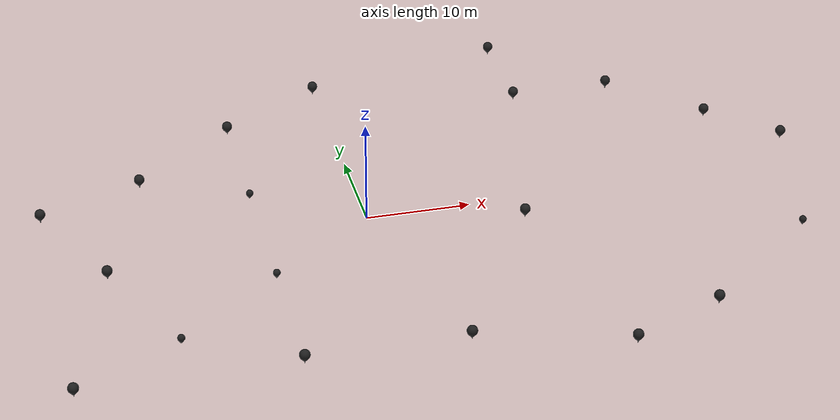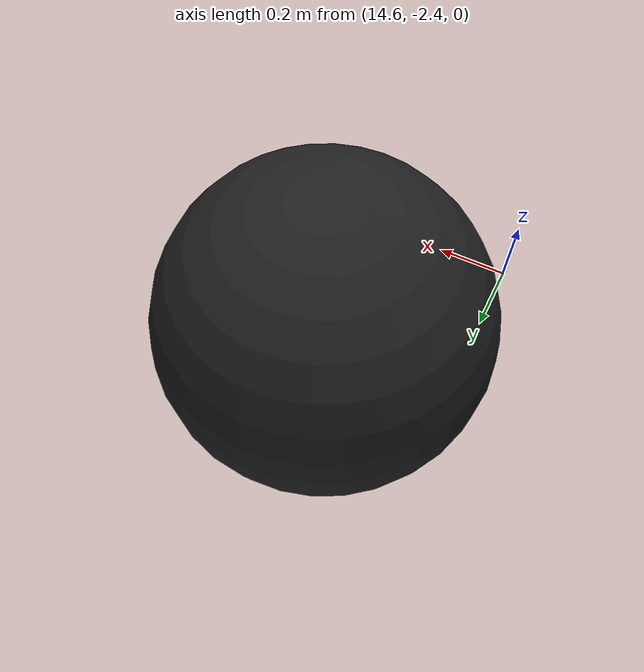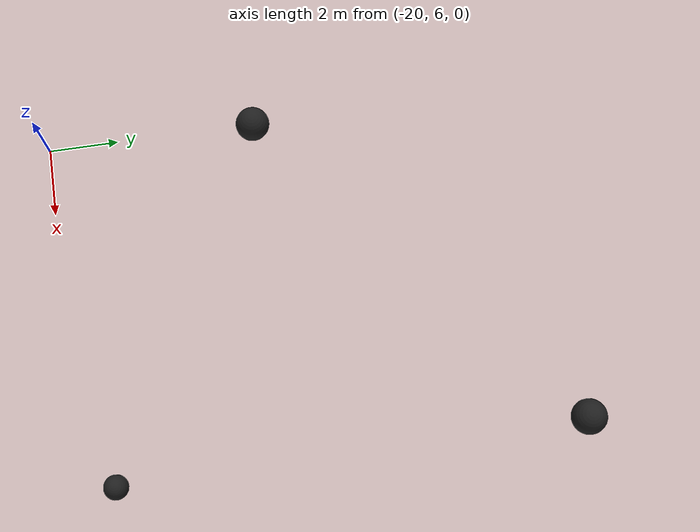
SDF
<sdf version="1.4">
 <world name="SandIsland">
  <wind><linear_velocity>10 0 0</linear_velocity></wind>
  <include><uri>model://sun</uri></include>
  <include><pose>-10 7 0 0 0 0</pose><name>obstalce_1</name><uri>model://models/buoy_a5</uri></include>
  <include><pose>-10 -7 0 0 0 0</pose><name>obstalce_2</name><uri>model://models/buoy_a5</uri></include>
  <include><pose>-20 12 0 0 0 0</pose><name>obstalce_3</name><uri>model://models/buoy_a7</uri></include>
  <include><pose>-20 -15 0 0 0 0</pose><name>obstalce_4</name><uri>model://models/buoy_a5</uri></include>
  <include><pose>-30 8 0 0 0 0</pose><name>obstalce_5</name><uri>model://models/buoy_a7</uri></include>
  <include><pose>-25 -3 0 0 0 0</pose><name>obstalce_6</name><uri>model://models/buoy_a7</uri></include>
  <include><pose>38 12 0 0 0 0</pose><name>obstalce_7</name><uri>model://models/buoy_a7</uri></include>
  <include><pose>40 -10 0 0 0 0</pose><name>obstalce_8</name><uri>model://models/buoy_a5</uri></include>
  <include><pose>-30 -20 0 0 0 0</pose><name>obstalce_9</name><uri>model://models/buoy_a7</uri></include>
  <include><pose>-10 -20 0 0 0 0</pose><name>obstacle_10</name><uri>model://models/buoy_a7</uri></include>
  <include><pose>-10 20 0 0 0 0</pose><name>obstacle_11</name><uri>model://models/buoy_a7</uri></include>
  <include><pose>28 -20 0 0 0 0</pose><name>obstacle_12</name><uri>model://models/buoy_a7</uri></include>
  <include><pose>30 20 0 0 0 0</pose><name>obstacle_13</name><uri>model://models/buoy_a7</uri></include>
  <include><pose>20 30 0 0 0 0</pose><name>obstacle_14</name><uri>model://models/buoy_a7</uri></include>
  <include><pose>15 -2 0 0 0 0</pose><name>obstacle_15</name><uri>model://models/buoy_a7</uri></include>
  <include><pose>44 6 0 0 0 0</pose><name>obstacle_16</name><uri>model://models/buoy_a7</uri></include>
  <include><pose>5 -20 0 0 0 0</pose><name>obstacle_17</name><uri>model://models/buoy_a7</uri></include>
  <include><pose>19 -24 0 0 0 0</pose><name>obstacle_18</name><uri>model://models/buoy_a7</uri></include>
  <include><pose>0 26 0 0 0 0</pose><name>obstacle_19</name><uri>model://models/buoy_a7</uri></include>
  <include><pose>20 20 0 0 0 0</pose><name>obstacle_20</name><uri>model://models/buoy_a7</uri></include>
 </world>
</sdf>

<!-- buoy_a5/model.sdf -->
<sdf version="1.4">
  <model name="buoy_a5">
    <link name="link">
      <pose>0 0 0 0 0 0</pose>
      <collision name="collision">
        <geometry>
          <mesh>
            <uri>model://buoy_a5/meshes/a5.dae</uri>
          </mesh>
        </geometry>
      </collision>
      <visual name="visual">
        <cast_shadows>false</cast_shadows>
        <geometry>
          <mesh>
            <uri>model://buoy_a5/meshes/a5.dae</uri>
          </mesh>
        </geometry>
        <material>
          <script>
            <uri>file://media/materials/scripts/gazebo.material</uri>
            <name>Gazebo/Black</name>
          </script>
        </material>
      </visual>
      <inertial>
      	<origin
        xyz="0 0 -5"
        rpy="0 0 0" />
        <mass>10</mass>
        <inertia>
          <ixx>10</ixx>
          <ixy>0</ixy>
          <ixz>0</ixz>
          <iyy>10</iyy>
          <iyz>0</iyz>
          <izz>10</izz>
        </inertia>
      </inertial>
    </link>
    <plugin name="BuoyancyPlugin" filename="libbuoyancy_gazebo_plugin.so">
      <fluid_density>1000</fluid_density>
      <fluid_level>0.2</fluid_level>
      <fluid_drag>50</fluid_drag>
      <link>
        <name>link</name>
        <center_of_volume>0 0 0.1</center_of_volume>
        <area>0.1</area>
        <height>0.5</height>
      </link>
    </plugin>S
  </model>
</sdf>

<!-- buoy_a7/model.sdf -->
<sdf version="1.4">
  <model name="buoy_a7">
    <link name="link">
      <pose>0 0 0 0 0 0</pose>
      <collision name="collision">
        <geometry>
          <mesh>
            <uri>model://buoy_a7/meshes/a7.dae</uri>
          </mesh>
        </geometry>
      </collision>
      <visual name="visual">
        <cast_shadows>false</cast_shadows>
        <geometry>
          <mesh>
            <uri>model://buoy_a7/meshes/a7.dae</uri>
          </mesh>
        </geometry>
        <material>
          <script>
            <uri>file://media/materials/scripts/gazebo.material</uri>
            <name>Gazebo/Black</name>
          </script>
        </material>
      </visual>
      <inertial>
      	<origin
        xyz="0 0 -5"
        rpy="0 0 0" />
        <mass>10</mass>
        <inertia>
          <ixx>10</ixx>
          <ixy>0</ixy>
          <ixz>0</ixz>
          <iyy>10</iyy>
          <iyz>0</iyz>
          <izz>10</izz>
        </inertia>
      </inertial>
    </link>
    <plugin name="BuoyancyPlugin" filename="libbuoyancy_gazebo_plugin.so">
      <fluid_density>1000</fluid_density>
      <fluid_level>0.25</fluid_level>
      <fluid_drag>50</fluid_drag>
      <link>
        <name>link</name>
        <center_of_volume>0 0 0.1</center_of_volume>
        <area>0.1</area>
        <height>0.5</height>
      </link>
    </plugin>
  </model>
</sdf>
